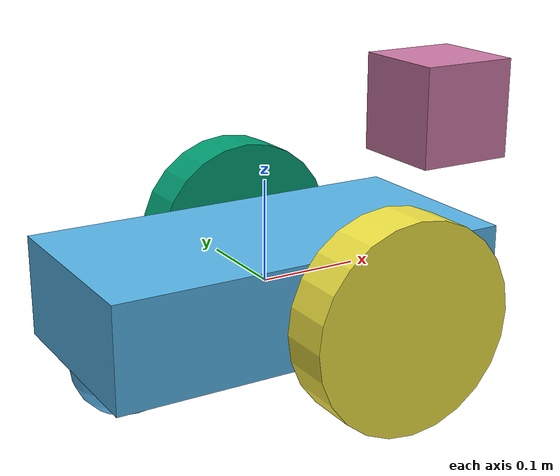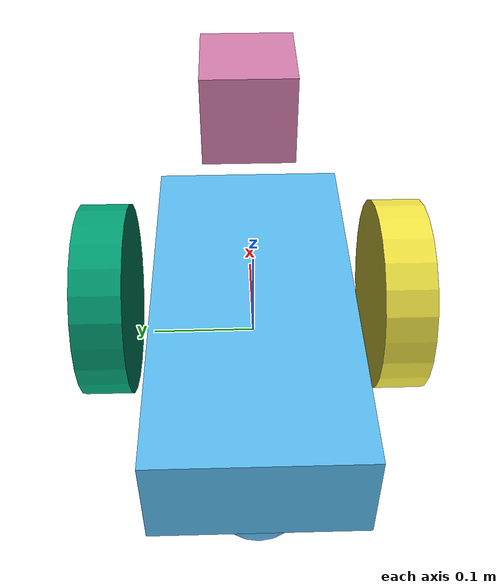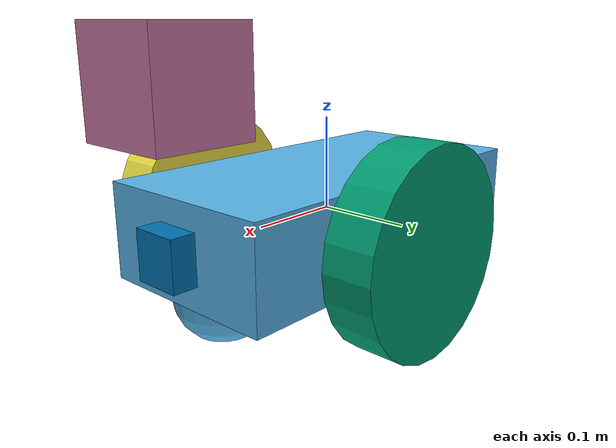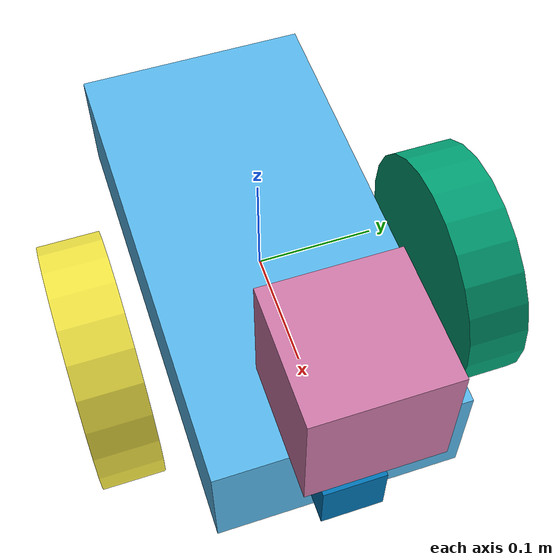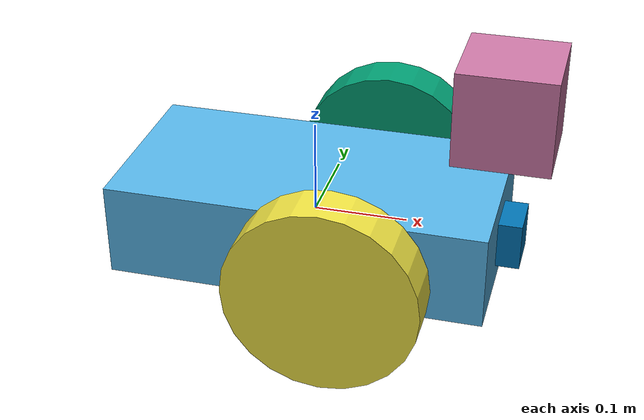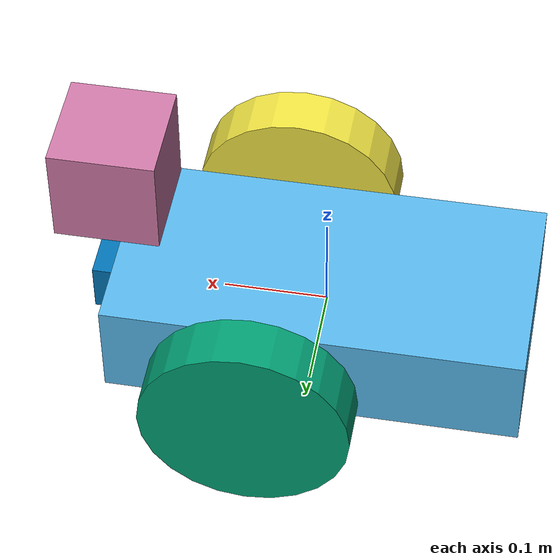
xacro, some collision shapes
<?xml version='1.0'?>
<robot name="slam_bot"
  xmlns:xacro="http://www.ros.org/wiki/xacro">
  <xacro:include filename="$(find slam_bot)/urdf/slam_bot.gazebo" />
  <link name="robot_footprint"></link>
  <joint name="robot_footprint_joint" type="fixed">
    <origin xyz="0 0 0" rpy="0 0 0" />
    <parent link="robot_footprint"/>
    <child link="chassis" />
  </joint>
  <link name='chassis'>
    <pose>0 0 0.1 0 0 0</pose>
    <inertial>
      <mass value="15.0"/>
      <origin xyz="0.0 0 0" rpy=" 0 0 0"/>
      <inertia ixx="0.1" ixy="0" ixz="0" iyy="0.1" iyz="0" izz="0.1" />
    </inertial>
    <collision name='collision'>
      <origin xyz="0 0 0" rpy=" 0 0 0"/>
      <geometry>
        <box size=".4 .2 .1"/>
      </geometry>
    </collision>
    <visual name='chassis_visual'>
      <origin xyz="0 0 0" rpy=" 0 0 0"/>
      <geometry>
        <box size=".4 .2 .1"/>
      </geometry>
    </visual>
    <collision name='back_caster_collision'>
      <origin xyz="-0.15 0 -0.05" rpy=" 0 0 0"/>
      <geometry>
        <sphere radius="0.045"/>
      </geometry>
      <surface>
        <friction>
          <ode>
            <mu>0.1</mu>
            <mu2>0.1</mu2>
            <slip1>0.</slip1>
            <slip2>0.</slip2>
          </ode>
        </friction>
      </surface>
    </collision>
    <visual name='back_caster_visual'>
      <origin xyz="-0.15 0 -0.05" rpy=" 0 0 0"/>
      <geometry>
        <sphere radius="0.05"/>
      </geometry>
    </visual>
    <collision name='front_caster_collision'>
      <origin xyz="0.15 0 -0.05" rpy=" 0 0 0"/>
      <geometry>
        <sphere radius="0.045"/>
      </geometry>
      <surface>
        <friction>
          <ode>
            <mu>0.1</mu>
            <mu2>0.1</mu2>
            <slip1>0.0</slip1>
            <slip2>0.0</slip2>

          </ode>
        </friction>
      </surface>
    </collision>
    <visual name='front_caster_visual'>
      <origin xyz="0.15 0.0 -0.05" rpy=" 0 0 0"/>
      <geometry>
        <sphere radius="0.05"/>
      </geometry>
    </visual>
  </link>
  <link name="left_wheel">
    <inertial>
      <origin xyz="0.0 0.0 0.0" rpy="0.0 1.5707 1.5707" />
      <mass value="5.0"/>
      <inertia ixx="0.1" ixy="0" ixz="0" iyy="0.1" iyz="0" izz="0.1" />
    </inertial>
    <collision name='collision'>
      <origin xyz="0.0 0.0 0.0" rpy=" 0 1.5707 1.5707"/>
      <geometry>
        <cylinder radius="0.1" length="0.05"/>
      </geometry>
    </collision>
    <visual name="lef_wheel_visual">
      <origin xyz="0.0 0.0 0.0" rpy="0 1.5707 1.5707" />
      <geometry>
        <cylinder radius="0.1" length="0.05"/>
      </geometry>
    </visual>
  </link>
  <joint type="continuous" name="left_wheel_hinge">
    <origin xyz="0.05 0.15 0.0" rpy="0 0 0"/>
    <child link="left_wheel"/>
    <parent link="chassis"/>
    <axis xyz="0 1 0" rpy="0 0 0"/>
    <limit effort="10000" velocity="1000"/>
    <joint_properties damping="1.0" friction="1.0"/>
  </joint>
  <link name="right_wheel">
    <inertial>
      <origin xyz="0.0 0.0 0.0" rpy="0.0 1.5707 1.5707" />
      <mass value="5.0"/>
      <inertia ixx="0.1" ixy="0" ixz="0" iyy="0.1" iyz="0" izz="0.1" />
    </inertial>
    <collision name='collision'>
      <origin xyz="0.0 0.0 0.0" rpy=" 0 1.5707 1.5707"/>
      <geometry>
        <cylinder radius="0.1" length="0.05"/>
      </geometry>
    </collision>
    <visual name="right_wheel_visual">
      <origin xyz="0.0 0.0 0.0" rpy="0 1.5707 1.5707" />
      <geometry>
        <cylinder radius="0.1" length="0.05"/>
      </geometry>
    </visual>
  </link>
  <joint type="continuous" name="right_wheel_hinge">
    <origin xyz="0.05 -0.15 0.0" rpy="0 0 0"/>
    <child link="right_wheel"/>
    <parent link="chassis"/>
    <axis xyz="0 1 0" rpy="0 0 0"/>
    <limit effort="10000" velocity="1000"/>
    <joint_properties damping="1.0" friction="1.0"/>
  </joint>

<!--Camera-->
  <link name="camera">
    <origin>0 0 0 0 0 0</origin>
    <inertial>
      <origin xyz="0 0 0" rpy="0 0 0"/>
      <mass value ="0.1"/>
      <inertia ixx="1e-6" ixy="0" ixz="0" iyy="1e-6" iyz="0" izz="1e-6"/>
    </inertial>
    <collision name="collision">
      <origin xyz="0 0 0" rpy="0 0 0"/>
      <geometry>
        <box size="0.05 0.05 0.05" />
      </geometry>
    </collision>
    <visual>
      <origin xyz="0 0 0" rpy="0 0 0"/>
      <geometry>
        <box size="0.05 0.05 0.05" />
      </geometry>
    </visual>
  </link>
  <joint type="fixed" name="camera_joint">
    <origin xyz="0.2 0 0" />
    <child link="camera" />
    <parent link="chassis" />
  </joint>
  <link name="camera_rgbd_frame">
  </link>
  <joint type="fixed" name="camera_rgbd_frame_joint">
	  <origin xyz="0 0 0" rpy="-1.57 0 -1.57" />
    <child link="camera_rgbd_frame" />
    <parent link="camera" />
  </joint>

<link name="hokuyo">
    <origin>0. 0 0 0 0 0</origin>
    <inertial>
      <origin xyz="0 0 0" rpy="0 0 0"/>
      <mass value ="0.1"/>
      <inertia ixx="1e-6" ixy="0" ixz="0" iyy="1e-6" iyz="0" izz="1e-6"/>
    </inertial>
    <collision name="collision">
      <origin xyz="0 0 0" rpy="0 0 0"/>
      <geometry>
        <box size="0.1 0.1 0.1" />
      </geometry>
    </collision>
    <visual>
      <geometry>
        <mesh filename="package://slam_bot/meshes/hokuyo.dae" />
      </geometry>
    </visual>
  </link>
  <joint type="fixed" name="hokuyo_joint">
    <origin xyz="0.2 0 0.15" rpy="0 0 0"/>
    <child link="hokuyo" />
    <parent link="chassis" />
  </joint>

</robot>
